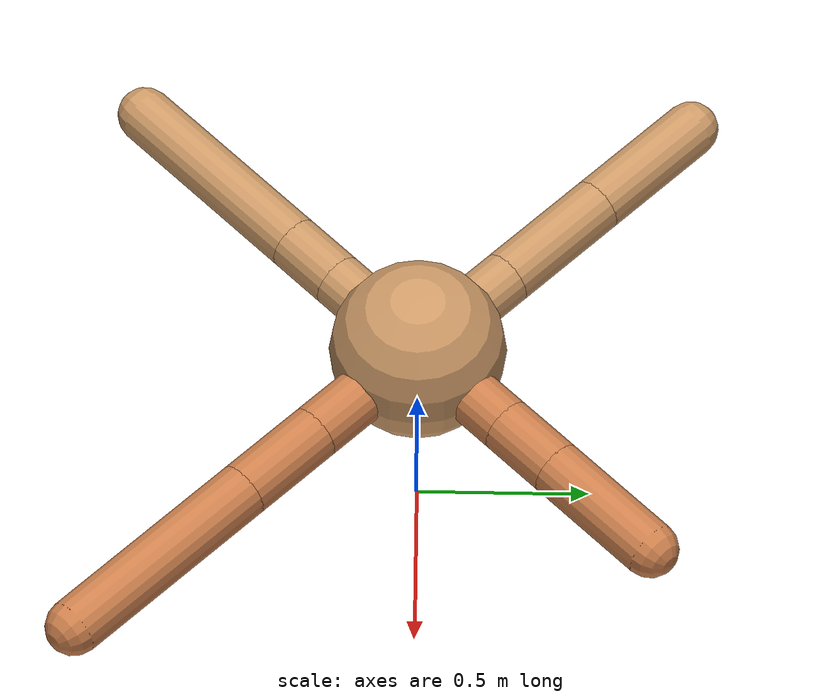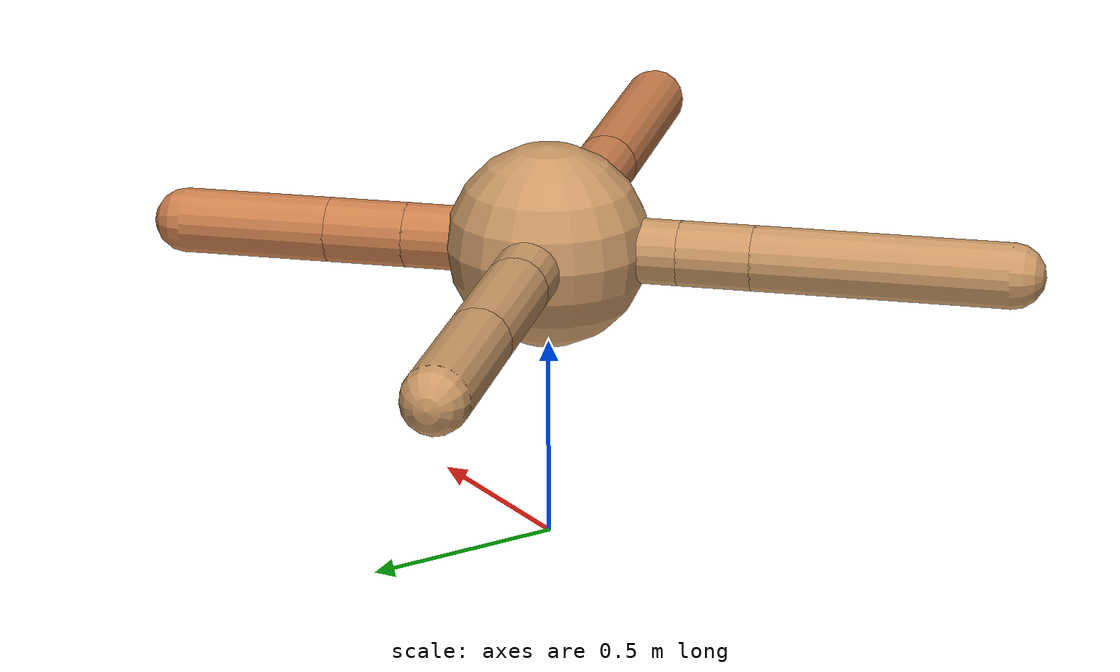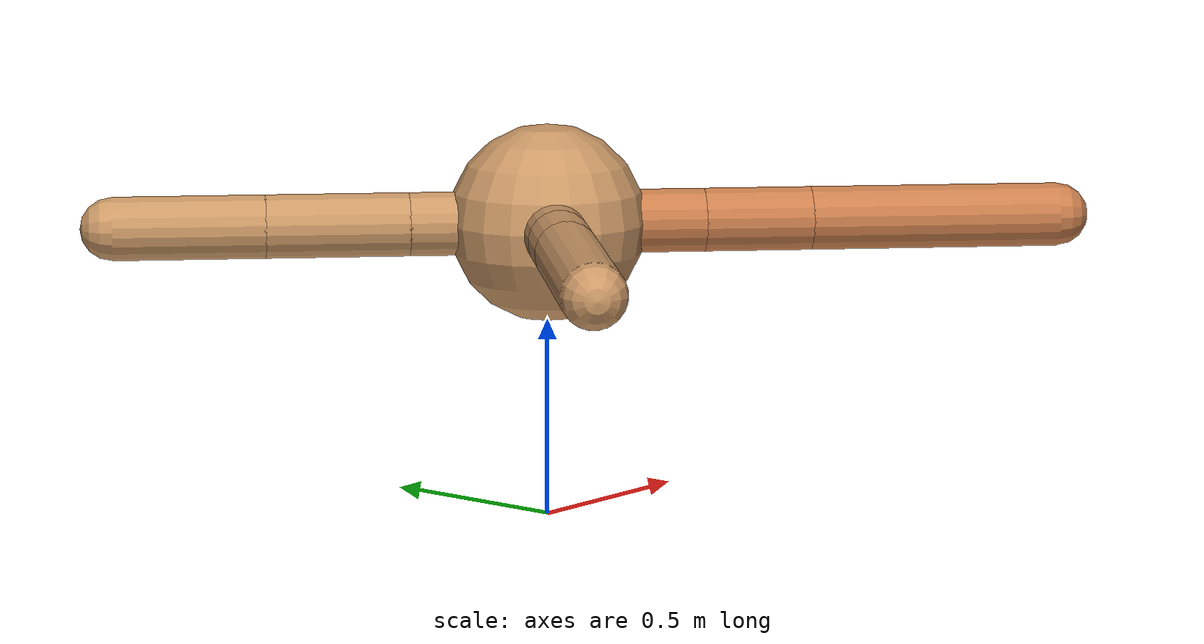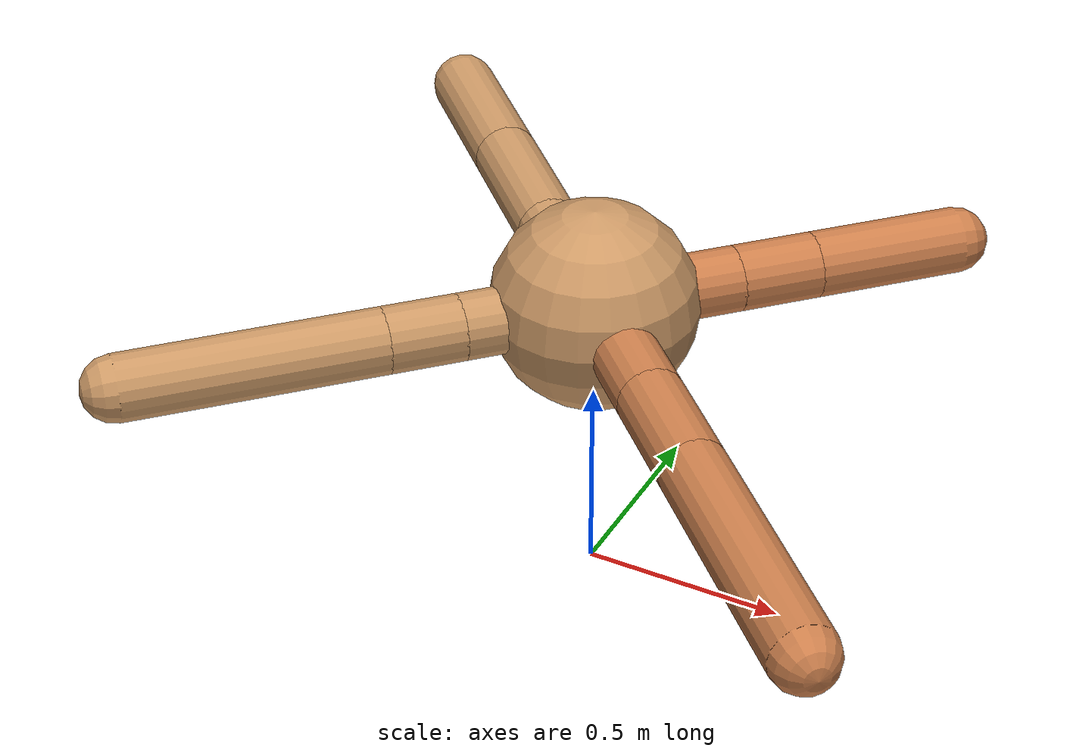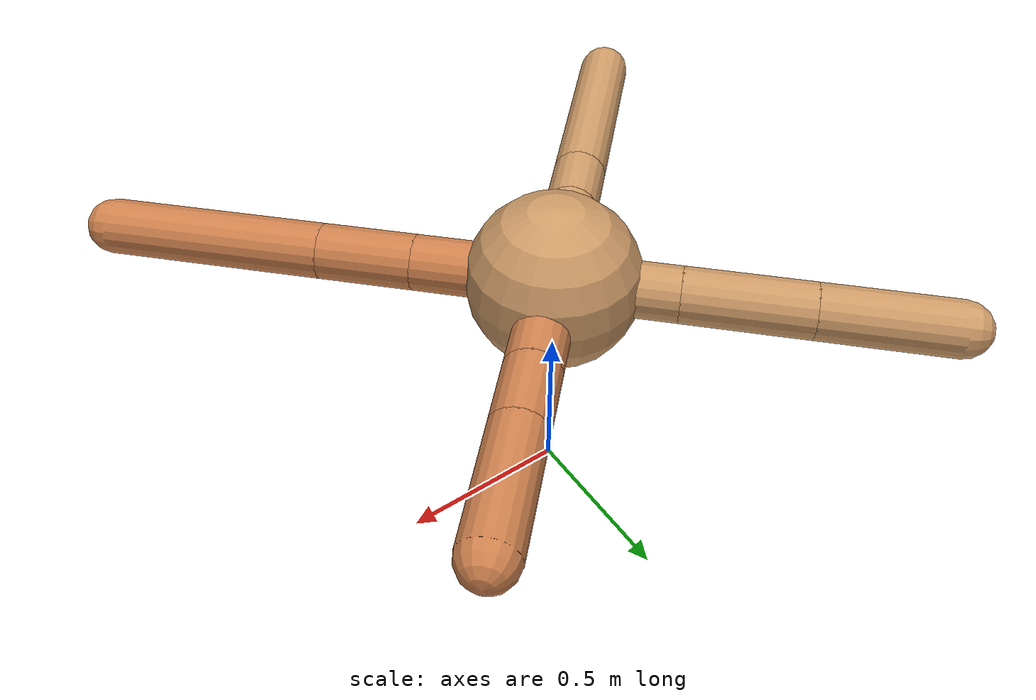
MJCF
<mujoco model="ant">
  <compiler angle="degree" coordinate="local" inertiafromgeom="true" />
  <option integrator="RK4" timestep="0.01" />
  <custom>
    <numeric data="0.0 0.0 0.55 1.0 0.0 0.0 0.0 0.0 1.0 0.0 -1.0 0.0 -1.0 0.0 1.0" name="init_qpos" />
  </custom>
  <default>
    <joint armature="1" damping="1" limited="true" />
    <geom conaffinity="0" condim="3" density="5.0" friction="1.5 0.1 0.1" margin="0.01" rgba="0.8 0.6 0.4 1" />
  </default>
  <worldbody>
    <body name="torso" pos="0 0 0.75">
      <geom name="torso_geom" pos="0 0 0" size="0.25" type="sphere" />

      <body name="front_left_leg" pos="0 0 0">
        <geom fromto="0.0 0.0 0.0 0.24843321052641976 0.24843321052641976 0.0" name="aux_1_geom" size="0.08" type="capsule" rgba=".8 .5 .3 1" />
        <body name="aux_1" pos="0.24843321052641976 0.24843321052641976 0.0">
          <joint axis="0 0 1" name="hip_1" pos="0.0 0.0 0.0" range="-40 40" type="hinge" />
          <geom fromto="0.0 0.0 0.0 0.13875023079576537 0.13875023079576537 0.0" name="left_leg_geom" size="0.08" type="capsule" rgba=".8 .5 .3 1" />
          <body pos="0.13875023079576537 0.13875023079576537 0.0" name="front_left_foot">
            <joint axis="-1 1 0" name="ankle_1" pos="0.0 0.0 0.0" range="30 100" type="hinge" />
            <geom fromto="0.0 0.0 0.0 0.2598570156924681 0.2598570156924681 0.0" name="left_ankle_geom" size="0.08" type="capsule" rgba=".8 .5 .3 1" />
          </body>
        </body>
      </body>
      <body name="front_right_leg" pos="0 0 0">
        <geom fromto="0.0 0.0 0.0 -0.24682317925083389 0.24682317925083389 0.0" name="aux_2_geom" size="0.08" type="capsule" />
        <body name="aux_2" pos="-0.24682317925083389 0.24682317925083389 0.0">
          <joint axis="0 0 1" name="hip_2" pos="0.0 0.0 0.0" range="-40 40" type="hinge" />
          <geom fromto="0.0 0.0 0.0 -0.25578518832590563 0.25578518832590563 0.0" name="right_leg_geom" size="0.08" type="capsule" />
          <body pos="-0.25578518832590563 0.25578518832590563 0.0" name="front_right_foot">
            <joint axis="1 1 0" name="ankle_2" pos="0.0 0.0 0.0" range="-100 -30" type="hinge" />
            <geom fromto="0.0 0.0 0.0 -0.2707989745256198 0.2707989745256198 0.0" name="right_ankle_geom" size="0.08" type="capsule" />
          </body>
        </body>
      </body>
      <body name="left_back_leg" pos="0 0 0">
        <geom fromto="0.0 0.0 0.0 -0.2300872481643318 -0.2300872481643318 0.0" name="aux_3_geom" size="0.08" type="capsule" />
        <body name="aux_3" pos="-0.2300872481643318 -0.2300872481643318 0.0">
          <joint axis="0 0 1" name="hip_3" pos="0.0 0.0 0.0" range="-40 40" type="hinge" />
          <geom fromto="0.0 0.0 0.0 -0.12737377231911406 -0.12737377231911406 0.0" name="back_leg_geom" size="0.08" type="capsule" />
          <body pos="-0.12737377231911406 -0.12737377231911406 0.0" name="left_back_foot">
            <joint axis="-1 1 0" name="ankle_3" pos="0.0 0.0 0.0" range="-100 -30" type="hinge" />
            <geom fromto="0.0 0.0 0.0 -0.4398491490412146 -0.4398491490412146 0.0" name="third_ankle_geom" size="0.08" type="capsule" />
          </body>
        </body>
      </body>
      <body name="right_back_leg" pos="0 0 0">
        <geom fromto="0.0 0.0 0.0 0.2814203892425816 -0.2814203892425816 0.0" name="aux_4_geom" size="0.08" type="capsule" rgba=".8 .5 .3 1" />
        <body name="aux_4" pos="0.2814203892425816 -0.2814203892425816 0.0">
          <joint axis="0 0 1" name="hip_4" pos="0.0 0.0 0.0" range="-40 40" type="hinge" />
          <geom fromto="0.0 0.0 0.0 0.19232367072535594 -0.19232367072535594 0.0" name="rightback_leg_geom" size="0.08" type="capsule" rgba=".8 .5 .3 1" />
          <body pos="0.19232367072535594 -0.19232367072535594 0.0" name="right_back_foot">
            <joint axis="1 1 0" name="ankle_4" pos="0.0 0.0 0.0" range="30 100" type="hinge" />
            <geom fromto="0.0 0.0 0.0 0.44774966251853904 -0.44774966251853904 0.0" name="fourth_ankle_geom" size="0.08" type="capsule" rgba=".8 .5 .3 1" />
          </body>
        </body>
      </body>
    </body>
  </worldbody>
  <actuator>
    <motor ctrllimited="true" ctrlrange="-1.0 1.0" joint="hip_4" gear="150" />
    <motor ctrllimited="true" ctrlrange="-1.0 1.0" joint="ankle_4" gear="150" />
    <motor ctrllimited="true" ctrlrange="-1.0 1.0" joint="hip_1" gear="150" />
    <motor ctrllimited="true" ctrlrange="-1.0 1.0" joint="ankle_1" gear="150" />
    <motor ctrllimited="true" ctrlrange="-1.0 1.0" joint="hip_2" gear="150" />
    <motor ctrllimited="true" ctrlrange="-1.0 1.0" joint="ankle_2" gear="150" />
    <motor ctrllimited="true" ctrlrange="-1.0 1.0" joint="hip_3" gear="150" />
    <motor ctrllimited="true" ctrlrange="-1.0 1.0" joint="ankle_3" gear="150" />
  </actuator>
</mujoco>
